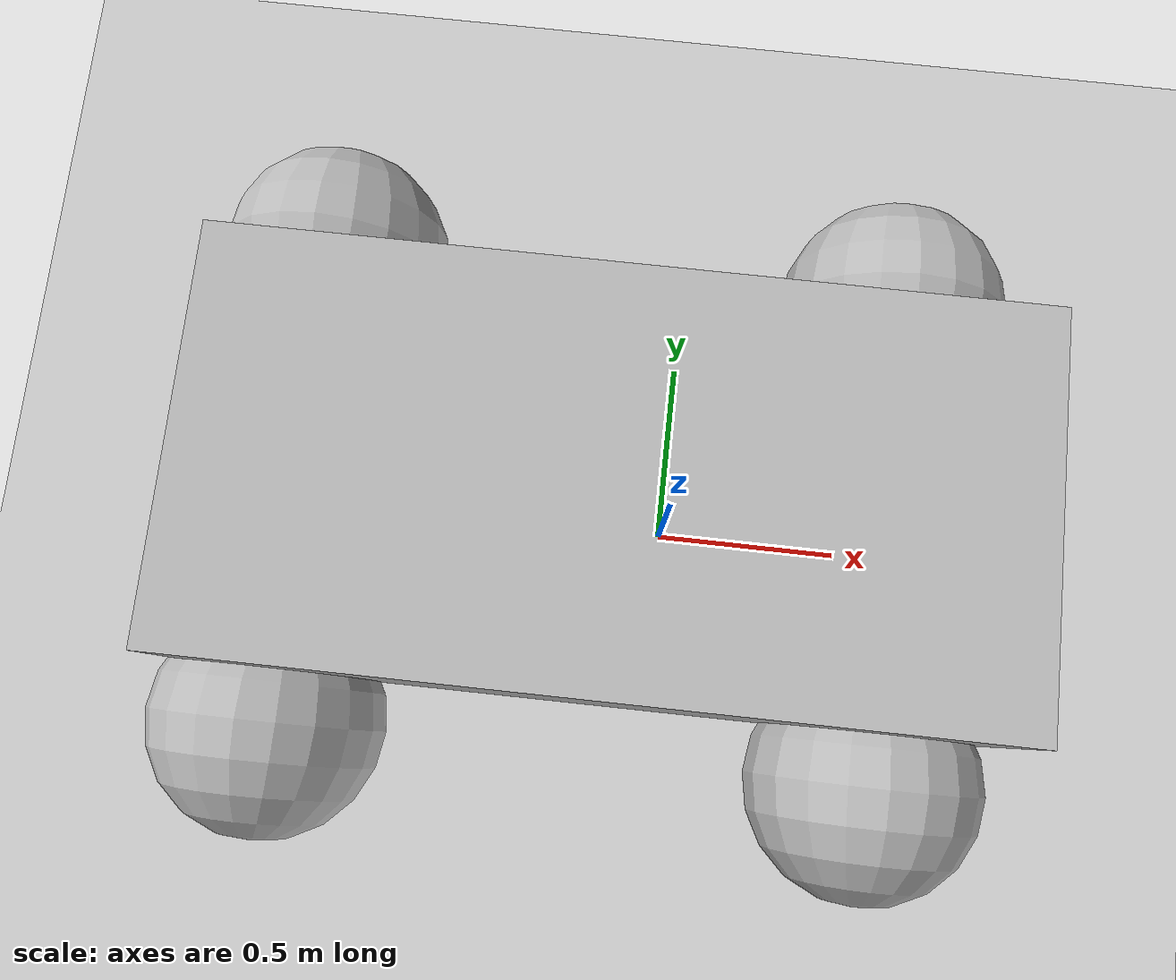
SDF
<sdf version="1.6">
 <world name="default">
  <include><uri>model://ground_plane</uri></include>
  <include><uri>model://sun</uri></include>
  <model name="rover">
   <pose>0 0 0.325 0 -0 0</pose>
   <link name="chassis">
    <pose>-0.151427 -0 0.175 0 -0 0</pose>
    <inertial>
     <mass>1.14395</mass>
     <inertia>
      <ixx>0.126164</ixx>
      <ixy>0</ixy>
      <ixz>0</ixz>
      <iyy>0.416519</iyy>
      <iyz>0</iyz>
      <izz>0.481014</izz>
     </inertia>
    </inertial>
    <visual name="visual"><geometry><box><size>2.01142 1 0.568726</size></box></geometry></visual>
    <collision name="collision"><geometry><box><size>2.01142 1 0.568726</size></box></geometry></collision>
   </link>
   <link name="back_left_wheel">
    <pose>0.554283 0.625029 -0.025 -1.5707 0 0</pose>
    <inertial>
     <mass>2</mass>
     <inertia><ixx>0.145833</ixx><ixy>0</ixy><ixz>0</ixz><iyy>0.145833</iyy><iyz>0</iyz><izz>0.125</izz></inertia>
    </inertial>
    <visual name="visual"><geometry><sphere><radius>0.3</radius></sphere></geometry></visual>
    <collision name="collision">
     <geometry><sphere><radius>0.3</radius></sphere></geometry>
     <surface>
      <friction><ode><mu>1</mu><mu2>1</mu2><slip1>0</slip1><slip2>0</slip2></ode></friction>
      <contact>
       <ode>
        <soft_cfm>0</soft_cfm>
        <soft_erp>0.2</soft_erp>
        <kp>1e+13</kp>
        <kd>1</kd>
        <max_vel>0.01</max_vel>
        <min_depth>0.01</min_depth>
       </ode>
      </contact>
     </surface>
    </collision>
   </link>
   <link name="back_right_wheel">
    <pose>0.554282 -0.625029 -0.025 -1.5707 0 0</pose>
    <inertial>
     <mass>2</mass>
     <inertia><ixx>0.145833</ixx><ixy>0</ixy><ixz>0</ixz><iyy>0.145833</iyy><iyz>0</iyz><izz>0.125</izz></inertia>
    </inertial>
    <visual name="visual"><geometry><sphere><radius>0.3</radius></sphere></geometry></visual>
    <collision name="collision">
     <geometry><sphere><radius>0.3</radius></sphere></geometry>
     <surface>
      <friction><ode><mu>1</mu><mu2>1</mu2><slip1>0</slip1><slip2>0</slip2></ode></friction>
      <contact>
       <ode>
        <soft_cfm>0</soft_cfm>
        <soft_erp>0.2</soft_erp>
        <kp>1e+13</kp>
        <kd>1</kd>
        <max_vel>0.01</max_vel>
        <min_depth>0.01</min_depth>
       </ode>
      </contact>
     </surface>
    </collision>
   </link>
   <link name="front_left_wheel">
    <pose>-0.957138 0.625029 -0.025 -1.5707 0 0</pose>
    <inertial>
     <mass>2</mass>
     <inertia><ixx>0.145833</ixx><ixy>0</ixy><ixz>0</ixz><iyy>0.145833</iyy><iyz>0</iyz><izz>0.125</izz></inertia>
    </inertial>
    <visual name="visual"><geometry><sphere><radius>0.3</radius></sphere></geometry></visual>
    <collision name="collision">
     <geometry><sphere><radius>0.3</radius></sphere></geometry>
     <surface>
      <friction><ode><mu>1</mu><mu2>1</mu2><slip1>0</slip1><slip2>0</slip2></ode></friction>
      <contact>
       <ode>
        <soft_cfm>0</soft_cfm>
        <soft_erp>0.2</soft_erp>
        <kp>1e+13</kp>
        <kd>1</kd>
        <max_vel>0.01</max_vel>
        <min_depth>0.01</min_depth>
       </ode>
      </contact>
     </surface>
    </collision>
   </link>
   <link name="front_right_wheel">
    <pose>-0.957138 -0.625029 -0.025 -1.5707 0 0</pose>
    <inertial>
     <mass>2</mass>
     <inertia><ixx>0.145833</ixx><ixy>0</ixy><ixz>0</ixz><iyy>0.145833</iyy><iyz>0</iyz><izz>0.125</izz></inertia>
    </inertial>
    <visual name="visual"><geometry><sphere><radius>0.3</radius></sphere></geometry></visual>
    <collision name="collision">
     <geometry><sphere><radius>0.3</radius></sphere></geometry>
     <surface>
      <friction><ode><mu>1</mu><mu2>1</mu2><slip1>0</slip1><slip2>0</slip2></ode></friction>
      <contact>
       <ode>
        <soft_cfm>0</soft_cfm>
        <soft_erp>0.2</soft_erp>
        <kp>1e+13</kp>
        <kd>1</kd>
        <max_vel>0.01</max_vel>
        <min_depth>0.01</min_depth>
       </ode>
      </contact>
     </surface>
    </collision>
   </link>
   <joint name="front_left_wheel_joint" type="revolute">
    <parent>chassis</parent>
    <child>front_left_wheel</child>
    <axis><xyz>0 0 1</xyz><limit><lower>-1.79769e+308</lower><upper>1.79769e+308</upper></limit></axis>
   </joint>
   <joint name="front_right_wheel_joint" type="revolute">
    <parent>chassis</parent>
    <child>front_right_wheel</child>
    <axis><xyz>0 0 1</xyz><limit><lower>-1.79769e+308</lower><upper>1.79769e+308</upper></limit></axis>
   </joint>
   <joint name="back_left_wheel_joint" type="revolute">
    <parent>chassis</parent>
    <child>back_left_wheel</child>
    <axis><xyz>0 0 1</xyz><limit><lower>-1.79769e+308</lower><upper>1.79769e+308</upper></limit></axis>
   </joint>
   <joint name="back_right_wheel_joint" type="revolute">
    <parent>chassis</parent>
    <child>back_right_wheel</child>
    <axis><xyz>0 0 1</xyz><limit><lower>-1.79769e+308</lower><upper>1.79769e+308</upper></limit></axis>
   </joint>
   <joint name="caster_wheel" type="ball"><parent>chassis</parent><child>caster</child></joint>
   <plugin name="diff_drive" filename="libgazebo_ros_diff_drive.so">
    <ros>
     <namespace>/demo</namespace>
     <remapping>cmd_vel:=cmd_demo</remapping>
     <remapping>odom:=odom_demo</remapping>
    </ros>
    <left_joint>left_wheel_joint</left_joint>
    <right_joint>right_wheel_joint</right_joint>
    <wheel_separation>1.25</wheel_separation>
    <wheel_diameter>0.6</wheel_diameter>
    <max_wheel_torque>20</max_wheel_torque>
    <max_wheel_acceleration>1.0</max_wheel_acceleration>
    <publish_odom>true</publish_odom>
    <publish_odom_tf>true</publish_odom_tf>
    <publish_wheel_tf>true</publish_wheel_tf>
    <odometry_frame>odom_demo</odometry_frame>
    <robot_base_frame>chassis</robot_base_frame>
   </plugin>
   <joint name="hokuyo_joint" type="fixed"><child>hokuyo::link</child><parent>chassis</parent></joint>
  </model>
 </world>
</sdf>
